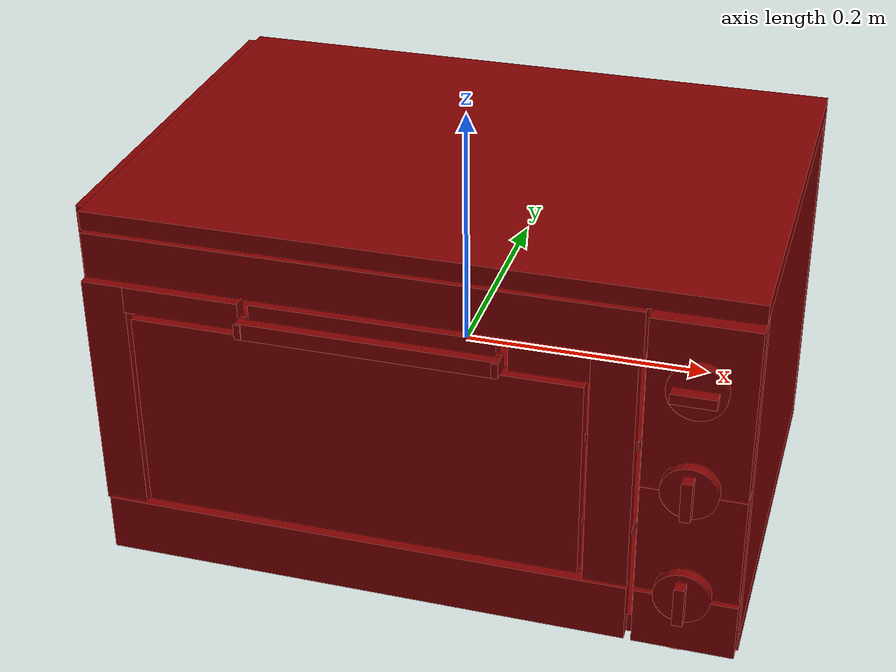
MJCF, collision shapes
<?xml version='1.0' encoding='UTF-8'?>
<mujoco model="model">
  <option timestep="0.002" gravity="0.0 0.0 -9.81"/>
  <compiler angle="radian"/>
  <asset>
    <mesh file="visuals/Body001.obj" name="Body001_vis"/>
    <mesh file="visuals/Door001.obj" name="Door001_vis"/>
    <mesh file="visuals/Door001_Clear.obj" name="Door001_Clear_vis"/>
    <mesh file="visuals/Knob001.obj" name="Knob001_vis"/>
    <mesh file="visuals/Knob002.obj" name="Knob002_vis"/>
    <mesh file="visuals/Knob003.obj" name="Knob003_vis"/>
    <mesh file="visuals/Shelf001.obj" name="Shelf001_vis"/>
    <mesh file="visuals/Shelf002.obj" name="Shelf002_vis"/>
    <texture file="visuals/T_BC001.png" name="Body001_material" type="2d"/>
    <material name="Body001_material" rgba="1 1 1 1.0" texture="Body001_material" shininess="0.4472135901451111" specular="1"/>
    <texture file="visuals/T_BC001.png" name="Door001_material" type="2d"/>
    <material name="Door001_material" rgba="1 1 1 1.0" texture="Door001_material" shininess="0.4472135901451111" specular="2"/>
    <texture file="visuals/T_BC001.png" name="Door001_Clear_material" type="2d"/>
    <material name="Door001_Clear_material" rgba="1 1 1 0.7322834730148315" texture="Door001_Clear_material" shininess="0.5" specular="0.3103448502657381"/>
    <texture file="visuals/T_BC001.png" name="Knob001_material" type="2d"/>
    <material name="Knob001_material" rgba="1 1 1 1.0" texture="Knob001_material" shininess="0.4472135901451111" specular="0.3103448502657381"/>
    <texture file="visuals/T_BC001.png" name="Knob002_material" type="2d"/>
    <material name="Knob002_material" rgba="1 1 1 1.0" texture="Knob002_material" shininess="0.4472135901451111" specular="0.3103448502657381"/>
    <texture file="visuals/T_BC001.png" name="Knob003_material" type="2d"/>
    <material name="Knob003_material" rgba="1 1 1 1.0" texture="Knob003_material" shininess="0.4472135901451111" specular="0.3103448502657381"/>
    <texture file="visuals/T_BC001.png" name="Shelf001_material" type="2d"/>
    <material name="Shelf001_material" rgba="1 1 1 1.0" texture="Shelf001_material" shininess="0.4472135901451111" specular="3"/>
    <texture file="visuals/T_BC001.png" name="Shelf002_material" type="2d"/>
    <material name="Shelf002_material" rgba="1 1 1 1.0" texture="Shelf002_material" shininess="0.4472135901451111" specular="3"/>
  </asset>
  <default>
    <default class="visual">
      <geom conaffinity="0" contype="0" group="1" type="mesh"/>
    </default>
    <default class="collision">
      <geom group="0" rgba="0.5 0 0 0.5"/>
    </default>
    <default class="spawn">
      <geom group="0" rgba="1 1 1 0.5" contype="0" conaffinity="0"/>
      <site group="0" rgba="1 1 1 0.5"/>
    </default>
    <default class="region">
      <geom group="1" conaffinity="0" contype="0" rgba="0 1 0 0"/>
    </default>
  </default>
  <worldbody>
    <body>
      <body name="object">
        <geom mesh="Body001_vis" type="mesh" solimp="0.998 0.998 0.001" solref="0.001 1" friction="0.95 0.3 0.1" class="visual" material="Body001_material"/>
        <geom class="collision" type="box" pos="0.005495 0.018830 -0.139955" size="0.25294461846351624 0.17093820869922638 0.008160573430359364" quat="1.0 0.0 0.0 0.0" density="1000.0"/>
        <geom class="collision" type="box" pos="0.005495 0.183601 0.012813" size="0.25294461846351624 0.008160586468875408 0.14157119393348694" quat="1.0 0.0 0.0 0.0" density="1000.0"/>
        <geom class="collision" type="box" pos="0.216794 0.018349 0.014751" size="0.04150004684925079 0.17141927778720856 0.14546450972557068" quat="1.0 0.0 0.0 0.0" density="1000.0"/>
        <geom class="collision" type="box" pos="-0.251076 0.018830 0.014751" size="0.0069770715199410915 0.17093820869922638 0.14546450972557068" quat="1.0 0.0 0.0 0.0" density="1000.0"/>
        <geom class="collision" type="box" pos="0.005495 0.010715 0.157290" size="0.25294461846351624 0.1790536642074585 0.007506129331886768" quat="1.0 0.0 0.0 0.0" density="1000.0"/>
        <geom class="collision" type="box" pos="-0.035704 -0.158898 0.129272" size="0.21174567937850952 0.010934745892882347 0.018324317410588264" quat="1.0 0.0 0.0 0.0" density="1000.0"/>
        <geom class="collision" type="box" pos="0.218265 -0.165039 0.076230" size="0.03927883505821228 0.009000536054372787 0.06987739354372025" quat="1.0 0.0 0.0 0.0" density="1000.0"/>
        <geom class="collision" type="box" pos="0.218265 -0.165039 -0.040434" size="0.039278119802474976 0.009000343270599842 0.045587215572595596" quat="1.0 0.0 0.0 0.0" density="1000.0"/>
        <geom class="collision" type="box" pos="0.218265 -0.165039 -0.114006" size="0.039278414100408554 0.009000303223729134 0.024065647274255753" quat="1.0 0.0 0.0 0.0" density="1000.0"/>
        <geom class="collision" type="cylinder" pos="-0.210066 -0.125567 -0.155737" size="0.016356460750102997 0.009058943018317223" quat="1.0 0.0 0.0 0.0" density="1000.0"/>
        <geom class="collision" type="cylinder" pos="-0.210066 0.164715 -0.155737" size="0.016356460750102997 0.009058943018317223" quat="1.0 0.0 0.0 0.0" density="1000.0"/>
        <geom class="collision" type="cylinder" pos="0.209162 0.164715 -0.155737" size="0.016356460750102997 0.009058943018317223" quat="1.0 0.0 0.0 0.0" density="1000.0"/>
        <geom class="collision" type="cylinder" pos="0.209162 -0.127833 -0.155737" size="0.016356460750102997 0.009058943018317223" quat="1.0 0.0 0.0 0.0" density="1000.0"/>
        <body name="Door001">
          <joint axis="1.0 0.0 0.0" pos="-0.041814 -0.163996 -0.140547" limited="true" name="Door001_joint" range="0.0 1.5707963267948966" type="hinge" damping="1" frictionloss="1" armature=".01" stiffness="0.05"/>
          <geom mesh="Door001_vis" type="mesh" solimp="0.998 0.998 0.001" solref="0.001 1" friction="0.95 0.3 0.1" class="visual" material="Door001_material"/>
          <geom class="collision" type="box" pos="-0.037252 -0.167968 -0.114006" size="0.21059465408325195 0.0055625904351472855 0.024065645411610603" quat="1.0 0.0 0.0 0.0" density="1000.0"/>
          <geom class="collision" type="box" pos="-0.234113 -0.164858 0.007120" size="0.017066562548279762 0.0055625904351472855 0.09915291517972946" quat="1.0 0.0 0.0 0.0" density="1000.0"/>
          <geom class="collision" type="box" pos="0.155967 -0.164858 0.007120" size="0.017066562548279762 0.0055625904351472855 0.09915291517972946" quat="1.0 0.0 0.0 0.0" density="1000.0"/>
          <geom class="collision" type="box" pos="-0.172148 -0.164858 0.095371" size="0.04601670056581497 0.0055625904351472855 0.010783925652503967" quat="1.0 0.0 0.0 0.0" density="1000.0"/>
          <geom class="collision" type="box" pos="-0.023455 -0.180890 0.092064" size="0.09913243353366852 0.004090181551873684 0.006625057198107243" quat="1.0 0.0 0.0 0.0" density="1000.0"/>
          <geom class="collision" type="box" pos="-0.120632 -0.178365 0.092064" size="0.0026336698792874813 0.007699350826442242 0.006029232870787382" quat="1.0 0.0 0.0 0.0" density="1000.0"/>
          <geom class="collision" type="box" pos="0.073585 -0.178365 0.092064" size="0.0026336698792874813 0.007699350826442242 0.006029232870787382" quat="1.0 0.0 0.0 0.0" density="1000.0"/>
          <geom class="collision" type="box" pos="-0.024002 -0.163615 0.095371" size="0.09419093281030655 0.0055625904351472855 0.010783927515149117" quat="1.0 0.0 0.0 0.0" density="1000.0"/>
          <geom class="collision" type="box" pos="0.109280 -0.164858 0.095371" size="0.02998490072786808 0.0055625904351472855 0.010783924721181393" quat="1.0 0.0 0.0 0.0" density="1000.0"/>
          <body name="Door001_Clear">
            <geom mesh="Door001_Clear_vis" type="mesh" solimp="0.998 0.998 0.001" solref="0.001 1" friction="0.95 0.3 0.1" class="visual" material="Door001_Clear_material"/>
            <geom class="collision" type="box" pos="-0.039139 -0.164858 -0.003035" size="0.1740773320198059 0.0055625904351472855 0.08262798935174942" quat="1.0 0.0 0.0 0.0" density="1000.0"/>
          </body>
        </body>
        <body name="Knob001">
          <joint axis="0.0 1.0 0.0" pos="0.215979 -0.176079 0.096667" limited="true" name="Knob001_joint" range="0.0 2.530727415391778" type="hinge" damping="0.05" armature="0.001"/>
          <geom mesh="Knob001_vis" type="mesh" solimp="0.998 0.998 0.001" solref="0.001 1" friction="0.95 0.3 0.1" class="visual" material="Knob001_material"/>
          <geom class="collision" type="cylinder" pos="0.216395 -0.179817 0.096725" size="0.02217002771794796 0.0032554829958826303" quat="0.7071067094802856 0.7071068286895752 0.0 0.0" density="1000.0"/>
          <geom class="collision" type="box" pos="0.215788 -0.189646 0.096833" size="0.016602540388703346 0.004773793742060661 0.004078166093677282" quat="1.0 0.0 0.0 0.0" density="1000.0"/>
        </body>
        <body name="Knob002">
          <joint axis="0.0 1.0 0.0" pos="0.215979 -0.176085 0.011745" limited="true" name="Knob002_joint" range="-0.8726646259971648 4.6774823953448035" type="hinge" damping="0.05" armature="0.001"/>
          <geom mesh="Knob002_vis" type="mesh" solimp="0.998 0.998 0.001" solref="0.001 1" friction="0.95 0.3 0.1" class="visual" material="Knob002_material"/>
          <geom class="collision" type="cylinder" pos="0.216097 -0.178680 0.011838" size="0.021573573350906372 0.0041509936563670635" quat="0.7071067094802856 0.7071068286895752 0.0 0.0" density="1000.0"/>
          <geom class="collision" type="box" pos="0.215788 -0.189646 0.012024" size="0.004078167490661144 0.004773793742060661 0.016602538526058197" quat="1.0 0.0 0.0 0.0" density="1000.0"/>
        </body>
        <body name="Knob003">
          <joint axis="0.0 1.0 0.0" pos="0.215977 -0.179956 -0.082427" limited="true" name="Knob003_joint" range="0.0 3.490658503988659" type="hinge" damping="0.05" armature="0.001"/>
          <geom mesh="Knob003_vis" type="mesh" solimp="0.998 0.998 0.001" solref="0.001 1" friction="0.95 0.3 0.1" class="visual" material="Knob003_material"/>
          <geom class="collision" type="cylinder" pos="0.216097 -0.178796 -0.082547" size="0.021573573350906372 0.0042671337723731995" quat="0.7071067094802856 0.7071068286895752 0.0 0.0" density="1000.0"/>
          <geom class="collision" type="box" pos="0.215788 -0.189646 -0.082388" size="0.004078167490661144 0.004773793742060661 0.016602538526058197" quat="1.0 0.0 0.0 0.0" density="1000.0"/>
        </body>
        <body name="Shelf001">
          <joint axis="0.0 -1.0 0.0" pos="-0.033907 0.020547 0.010611" limited="true" name="Shelf001_joint" range="0.0 0.2" type="slide" damping="1" frictionloss="1" armature=".01" stiffness="0.05"/>
          <geom mesh="Shelf001_vis" type="mesh" solimp="0.998 0.998 0.001" solref="0.001 1" friction="0.95 0.3 0.1" class="visual" material="Shelf001_material"/>
          <geom class="collision" type="box" pos="-0.033644 0.020901 0.010154" size="0.20364992320537567 0.15276478230953217 0.004150096792727709" quat="1.0 0.0 0.0 0.0" density="1000.0"/>
        </body>
        <body name="Shelf002">
          <joint axis="0.0 -1.0 0.0" pos="-0.033907 0.020547 -0.065631" limited="true" name="Shelf002_joint" range="0.0 0.2" type="slide" damping="1" frictionloss="1" armature=".01" stiffness="0.05"/>
          <geom mesh="Shelf002_vis" type="mesh" solimp="0.998 0.998 0.001" solref="0.001 1" friction="0.95 0.3 0.1" class="visual" material="Shelf002_material"/>
          <geom class="collision" type="box" pos="-0.033644 0.019715 -0.065804" size="0.20364992320537567 0.15395024418830872 0.004150095395743847" quat="1.0 0.0 0.0 0.0" density="1000.0"/>
        </body>
        <geom class="region" name="reg_int" type="box" pos="-0.03433699999999999 0.016904500000000003 0.0094645" size="0.21046700000000002 0.16102149999999998 0.1420865"/>
        <geom class="region" name="reg_main" type="box" pos="0.0 0.012400000000000008 0.0" size="0.25851 0.181379 0.164796"/>
      </body>
    </body>
  </worldbody>
  <actuator>
    <motor name="Door001_joint_actuator" joint="Door001_joint" gear="50"/>
    <motor name="Knob001_joint_actuator" joint="Knob001_joint" gear="50"/>
    <motor name="Knob002_joint_actuator" joint="Knob002_joint" gear="50"/>
    <motor name="Knob003_joint_actuator" joint="Knob003_joint" gear="50"/>
    <motor name="Shelf001_joint_actuator" joint="Shelf001_joint" gear="50"/>
    <motor name="Shelf002_joint_actuator" joint="Shelf002_joint" gear="50"/>
  </actuator>
</mujoco>
